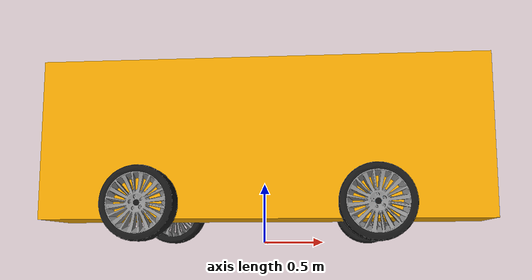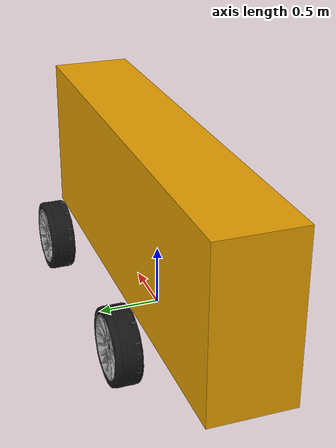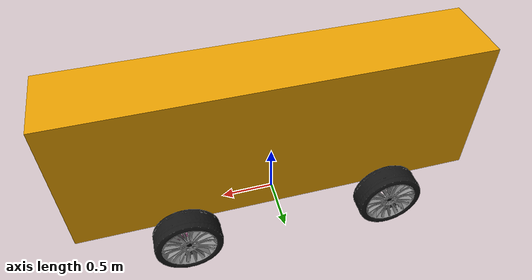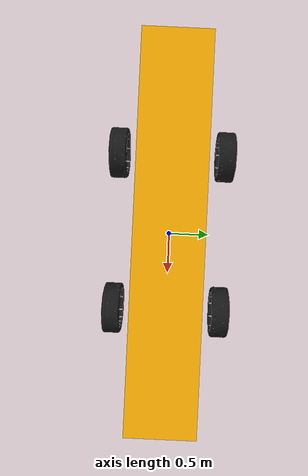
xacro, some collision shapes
<?xml version="1.0" ?>

<robot name="$(arg roboname)"
  xmlns:xacro="http://www.ros.org/wiki/xacro">

  <xacro:property name="PI" value="3.1415926835897931"/>

  <!-- base -->
  <xacro:property name="base_length" value="3.8"/>
  <xacro:property name="base_width" value="0.68"/>
  <xacro:property name="base_height" value="1.370"/>
  <xacro:property name="base_collision_height" value="0.875"/>
  <xacro:property name="base_mass" value="2080"/>
  <xacro:property name="base_mass_ixx" value="343"/>
  <xacro:property name="base_mass_iyy" value="728"/>
  <xacro:property name="base_mass_izz" value="7508.800"/>

  <!-- rear tyre -->
  <xacro:property name="rear_tyre_x" value="0.945"/>
  <xacro:property name="rear_tyre_y" value="0.642"/>
  <xacro:property name="rear_tyre_r" value="0.3"/>
  <xacro:property name="rear_tyre_length" value="0.165"/>
  <xacro:property name="rear_tyre_mass" value="20"/>
  <xacro:property name="rear_tyre_mass_ixx" value="0.5"/>
  <xacro:property name="rear_tyre_mass_iyy" value="0.9"/>
  <xacro:property name="rear_tyre_mass_izz" value="0.5"/>

  <!-- front tyre -->
  <xacro:property name="front_tyre_x" value="0.923"/>
  <xacro:property name="front_tyre_y" value="0.642"/>
  <xacro:property name="front_tyre_r" value="0.3"/>
  <xacro:property name="front_tyre_length" value="0.165"/>
  <xacro:property name="front_tyre_mass" value="20"/>
  <xacro:property name="front_tyre_mass_ixx" value="0.5"/>
  <xacro:property name="front_tyre_mass_iyy" value="0.9"/>
  <xacro:property name="front_tyre_mass_izz" value="0.5"/>

  <!-- steering -->
  <xacro:property name="str_angle" value="0.6"/>
  <xacro:property name="str_length" value="0.01"/>
  <xacro:property name="str_radius" value="0.1"/>
  <xacro:property name="str_mass" value="5"/>
  <xacro:property name="str_mass_ixx" value="0.012"/>
  <xacro:property name="str_mass_iyy" value="0.025"/>
  <xacro:property name="str_mass_izz" value="0.012"/>

  <!--Car Body-->
  <link name="base_link">
    <collision>
      <origin xyz="0 0 ${base_collision_height}" rpy="0 0 0"/>
      <geometry>
        <box size="${base_length} ${base_width} ${base_height}"/>
      </geometry>
    </collision>

    <visual>
      <origin xyz="0.05 0 ${base_collision_height}" rpy="0 0 ${PI/2}"/>
      <geometry>
        <mesh filename="file://///home/next/ros_workspace/routing_planning/ros/src/car_model/meshes/vehicle_body.dae"/>
      </geometry>
    </visual>
  </link>

  <joint name="inertial_joint" type="fixed">
    <parent link="base_link"/>
    <child link="main_mass"/>
    <origin xyz="0 0 0" rpy="0 0 0"/>
  </joint>

  <link name="main_mass" type="fixed">
    <inertial>
      <origin xyz="0 0 0" rpy="0 0 0"/>
      <mass value="${base_mass}"/>
      <inertia ixx="${base_mass_ixx}" ixy="0.000000" ixz="0.000000" iyy="${base_mass_iyy}" iyz="0.000000" izz="${base_mass_izz}"/>
    </inertial>
  </link>

  <!--Rear Right Wheel-->
  <joint name="rear_right_wheel_joint" type="continuous">
    <parent link="base_link"/>
    <child link="rear_right_wheel_link"/>
    <origin xyz="${-rear_tyre_x} ${-rear_tyre_y} ${rear_tyre_r}" rpy="0 0 0"/>
    <axis xyz="0 1 0"/>
    <dynamics damping="0.1"/>
    <limit effort="100000" velocity="10000" />
    <joint_properties damping="0.0" friction="0.0" />
  </joint>

  <link name="rear_right_wheel_link">
    <collision>
      <origin xyz="0 0 0" rpy="${PI/2} 0 0"/>
      <geometry>
        <cylinder length="${rear_tyre_length}" radius="${rear_tyre_r}"/>
      </geometry>
    </collision>

    <visual>
      <origin xyz="0 0 0" rpy="0 0 -${PI/2}"/>
      <geometry>
        <mesh filename="file:////home/next/ros_workspace/routing_planning/ros/src/car_model/meshes/wheel.dae"/>
      </geometry>
    </visual>

    <inertial>
      <origin xyz="0 0 0" rpy="0 0 0"/>
      <mass value="${rear_tyre_mass}"/>
      <inertia ixx="${rear_tyre_mass_ixx}" ixy="0.000000" ixz="0.000000" iyy="${rear_tyre_mass_iyy}" iyz="0.000000" izz="${rear_tyre_mass_izz}"/>
    </inertial>
  </link>

  <!--Rear Left Wheel-->
  <joint name="rear_left_wheel_joint" type="continuous">
    <parent link="base_link"/>
    <child link="rear_left_wheel_link"/>
    <origin xyz="${-rear_tyre_x} ${rear_tyre_y} ${rear_tyre_r}" rpy="0 0 0"/>
    <axis xyz="0 1 0"/>
    <dynamics damping="0.1"/>
    <limit effort="100000" velocity="10000" />
    <joint_properties damping="0.0" friction="0.0" />
  </joint>

  <link name="rear_left_wheel_link">
    <collision>
      <origin xyz="0 0 0" rpy="${PI/2} 0 0"/>
      <geometry>
        <cylinder length="${rear_tyre_length}" radius="${rear_tyre_r}"/>
      </geometry>
    </collision>

    <visual>
      <origin xyz="0 0 0" rpy="0 0 ${PI/2}"/>
      <geometry>
        <mesh filename="file:////home/next/ros_workspace/routing_planning/ros/src/car_model/meshes/wheel.dae"/>
        <cylinder length="${rear_tyre_length}" radius="${rear_tyre_r}"/>
      </geometry>
    </visual>

    <inertial>
      <origin xyz="0 0 0" rpy="0 0 0"/>
      <mass value="${rear_tyre_mass}"/>
      <inertia ixx="${rear_tyre_mass_ixx}" ixy="0.000000" ixz="0.000000" iyy="${rear_tyre_mass_iyy}" iyz="0.000000" izz="${rear_tyre_mass_izz}"/>
    </inertial>
  </link>

  <!--Front Right Steering-->
  <joint name="front_right_steering_joint" type="revolute">
    <parent link="base_link"/>
    <child link="front_right_steering_link"/>
    <origin xyz="${front_tyre_x} ${-front_tyre_y} ${front_tyre_r}" rpy="0 0 0"/>
    <axis xyz="0 0 1"/>
    <limit lower="${-str_angle}" upper="${str_angle}" effort="1000000.0" velocity="10000.0"/>
    <dynamics damping="10.0" friction="0.0"/>
  </joint>

  <link name="front_right_steering_link">
    <visual>
      <origin xyz="0 0 0" rpy="${PI/2} 0 0"/>
      <geometry>
        <cylinder length="${str_length}" radius="${str_radius}"/>
      </geometry>
    </visual>

    <inertial>
      <origin xyz="0 0 0" rpy="0 0 0"/>
      <mass value="${str_mass}"/>
      <inertia ixx="${str_mass_ixx}" ixy="0.000000" ixz="0.000000" iyy="${str_mass_iyy}" iyz="0.000000" izz="${str_mass_izz}"/>
    </inertial>
  </link>

  <!--Front Right Wheel-->
  <joint name="front_right_wheel_joint" type="continuous">
    <parent link="front_right_steering_link"/>
    <child link="front_right_wheel_link"/>
    <origin xyz="0 0 0" rpy="0 0 0"/>
    <axis xyz="0 1 0"/>
    <dynamics damping="0.1"/>
    <limit effort="1000000" velocity="10000" />
    <joint_properties damping="0.0" friction="0.0" />
  </joint>

  <link name="front_right_wheel_link">
    <collision>
      <origin xyz="0 0 0" rpy="${PI/2} 0 0"/>
      <geometry>
        <cylinder length="${front_tyre_length}" radius="${front_tyre_r}"/>
      </geometry>
    </collision>

    <visual>
      <origin xyz="0 0 0" rpy="0 0 -${PI/2}"/>
      <geometry>
        <mesh filename="file:////home/next/ros_workspace/routing_planning/ros/src/car_model/meshes/wheel.dae"/>
        <cylinder length="${front_tyre_length}" radius="${front_tyre_r}"/>
      </geometry>
    </visual>

    <inertial>
      <origin xyz="0 0 0" rpy="0 0 0"/>
      <mass value="${front_tyre_mass}"/>
      <inertia ixx="${front_tyre_mass_ixx}" ixy="0.000000" ixz="0.000000" iyy="${front_tyre_mass_iyy}" iyz="0.000000" izz="${front_tyre_mass_izz}"/>
    </inertial>
  </link>

  <!--Front Left Steering-->
  <joint name="front_left_steering_joint" type="revolute">
    <parent link="base_link"/>
    <child link="front_left_steering_link"/>
    <origin xyz="${front_tyre_x} ${front_tyre_y} ${front_tyre_r}" rpy="0 0 0"/>
    <axis xyz="0 0 1"/>
    <limit lower="${-str_angle}" upper="${str_angle}" effort="1000000.0" velocity="10000.0"/>
    <dynamics damping="10.0" friction="0.0"/>
  </joint>

  <link name="front_left_steering_link">

    <visual>
      <origin xyz="0 0 0" rpy="${PI/2} 0 0"/>
      <geometry>
        <cylinder length="${str_length}" radius="${str_radius}"/>
      </geometry>
    </visual>

    <inertial>
      <origin xyz="0 0 0" rpy="0 0 0"/>
      <mass value="${str_mass}"/>
      <inertia ixx="${str_mass_ixx}" ixy="0.000000" ixz="0.000000" iyy="${str_mass_iyy}" iyz="0.000000" izz="${str_mass_izz}"/>
    </inertial>
  </link>

  <!--Front Left Wheel-->
  <joint name="front_left_wheel_joint" type="continuous">
    <parent link="front_left_steering_link"/>
    <child link="front_left_wheel_link"/>
    <origin xyz="0 0 0" rpy="0 0 0"/>
    <axis xyz="0 1 0"/>
    <dynamics damping="0.1"/>
    <limit effort="1000000" velocity="10000" />
    <joint_properties damping="0.0" friction="0.0" />
  </joint>

  <link name="front_left_wheel_link">
    <collision>
      <origin xyz="0 0 0" rpy="${PI/2} 0 0"/>
      <geometry>
        <cylinder length="${front_tyre_length}" radius="${front_tyre_r}"/>
      </geometry>
    </collision>

    <visual>
      <origin xyz="0 0 0" rpy="0 0 ${PI/2}"/>
      <geometry>
        <mesh filename="file:////home/next/ros_workspace/routing_planning/ros/src/car_model/meshes/wheel.dae"/>
      </geometry>
    </visual>

    <inertial>
      <origin xyz="0 0 0" rpy="0 0 0"/>
      <mass value="${front_tyre_mass}"/>
      <inertia ixx="${front_tyre_mass_ixx}" ixy="0.000000" ixz="0.000000" iyy="${front_tyre_mass_iyy}" iyz="0.000000" izz="${front_tyre_mass_izz}"/>
    </inertial>
  </link>

  <!-- motors and transmissions for the two rear wheels -->
  <transmission name="tran1">
    <type>transmission_interface/SimpleTransmission</type>
    <joint name="rear_right_wheel_joint">
      <hardwareInterface>hardware_interface/VelocityJointInterface</hardwareInterface>
    </joint>
    <actuator name="motor1">
      <hardwareInterface>hardware_interface/VelocityJointInterface</hardwareInterface>
      <mechanicalReduction>1</mechanicalReduction>
    </actuator>
  </transmission>

  <transmission name="tran2">
    <type>transmission_interface/SimpleTransmission</type>
    <joint name="rear_left_wheel_joint">
      <hardwareInterface>hardware_interface/VelocityJointInterface</hardwareInterface>
    </joint>
    <actuator name="motor2">
      <hardwareInterface>hardware_interface/VelocityJointInterface</hardwareInterface>
      <mechanicalReduction>1</mechanicalReduction>
    </actuator>
  </transmission>

  <!-- EPS and transmissions for the front steering -->
  <transmission name="tran3">
    <type>transmission_interface/SimpleTransmission</type>
    <joint name="front_right_steering_joint">
      <hardwareInterface>hardware_interface/EffortJointInterface</hardwareInterface>
    </joint>
    <actuator name="eps_right">
      <hardwareInterface>hardware_interface/EffortJointInterface</hardwareInterface>
      <mechanicalReduction>1</mechanicalReduction>
      <motorTorqueConstant>1000000</motorTorqueConstant>
    </actuator>
  </transmission>

  <transmission name="tran4">
    <type>transmission_interface/SimpleTransmission</type>
    <joint name="front_left_steering_joint">
      <hardwareInterface>hardware_interface/EffortJointInterface</hardwareInterface>
    </joint>
    <actuator name="eps_left">
      <hardwareInterface>hardware_interface/EffortJointInterface</hardwareInterface>
      <mechanicalReduction>1</mechanicalReduction>
      <motorTorqueConstant>1000000</motorTorqueConstant>
    </actuator>
  </transmission>

  <!-- Friction Parametres -->

  <gazebo reference="rear_right_wheel_link">
    <mu1>10000000</mu1>
    <mu2>10000000</mu2>
    <kp>10000000</kp>
    <kd>1</kd>
    <minDepth>0.01</minDepth>
    <maxVel>100</maxVel>
  </gazebo>

  <gazebo reference="rear_left_wheel_link">
    <mu1>10000000</mu1>
    <mu2>10000000</mu2>
    <kp>10000000</kp>
    <kd>1</kd>
    <minDepth>0.01</minDepth>
    <maxVel>100</maxVel>
  </gazebo>

  <gazebo reference="front_right_wheel_link">
    <mu1>10000000</mu1>
    <mu2>10000000</mu2>
    <kp>10000000</kp>
    <kd>1</kd>
    <minDepth>0.01</minDepth>
    <maxVel>100</maxVel>
  </gazebo>

  <gazebo reference="front_left_wheel_link">
    <mu1>10000000</mu1>
    <mu2>10000000</mu2>
    <kp>10000000</kp>
    <kd>1</kd>
    <minDepth>0.01</minDepth>
    <maxVel>100</maxVel>
  </gazebo>

  <!-- Gazebo Plugins -->
  <gazebo>
    <plugin name="gazebo_ros_control" filename="libgazebo_ros_control.so">
      <robotNamespace>/$(arg roboname)</robotNamespace>
      <robotParam>robot_description</robotParam>
      <robotSimType>gazebo_ros_control/DefaultRobotHWSim</robotSimType>
      <legacyModeNS> true </legacyModeNS>
    </plugin>
  </gazebo>

  <gazebo>
    <plugin name="joint_state_publisher" filename="libgazebo_ros_joint_state_publisher.so">
      <jointName>rear_left_wheel_joint, rear_right_wheel_joint, front_left_steering_joint, front_right_steering_joint, front_right_wheel_joint, front_left_wheel_joint</jointName>
      <updateRate>50.0</updateRate>
      <robotNamespace>/$(arg roboname)</robotNamespace>
      <alwaysOn>true</alwaysOn>
    </plugin>
  </gazebo>

</robot>
